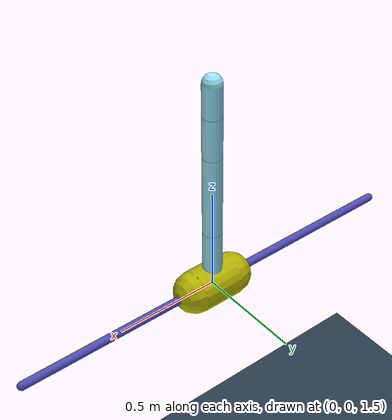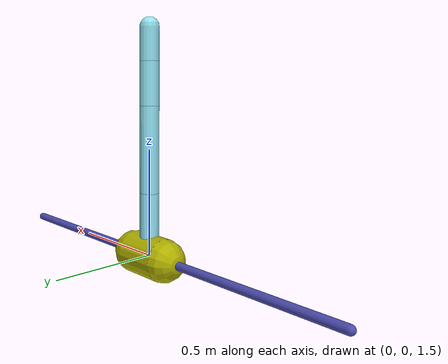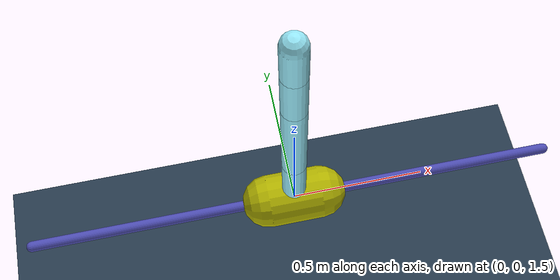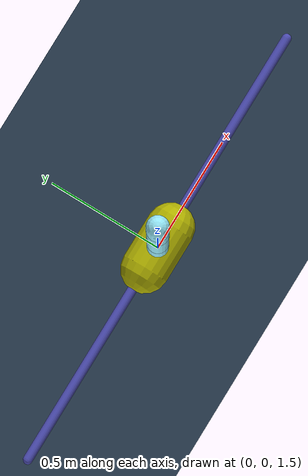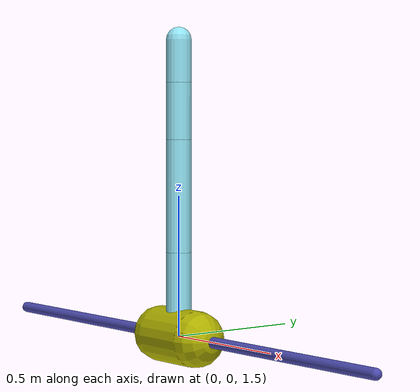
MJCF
<mujoco model="quadruple_pendulum">
    <include file="../worlds/world.xml"/>
    <compiler coordinate="local" inertiafromgeom="true"/>
    <default>
        <joint damping="0"/>
        <geom contype="0" friction="0 0 0"/>
    </default>
    <option gravity="0 0 -9.81" integrator="RK4"/>
    <size nstack="3000"/>
    <worldbody>
        <geom name="rail" pos="0 0 1.5" quat="0.707 0 0.707 0" rgba="0.3 0.3 0.7 1" size="0.02 1" type="capsule"/>
        <body name="pole0" pos="0 0 1.5">
            <camera name="track_front" mode="fixed" pos="0 4 0" xyaxes="-1 0 0 0 0 1"/>
            <geom name="geom_b0" pos="0 0 0" quat="0.707 0 0.707 0" size="0.1 0.1" type="capsule" rgba="0.7 0.7 0 1"/>
            <site name="pole0_0" pos="0 0 0" size="0.01 0.01"/>
            <site name="pole0_1" pos="0 0 0" size="0.01 0.01"/>
            <body name="pole1" pos="0 0 0">
                <joint axis="0 1 0" name="pendulum1" pos="0 0 0" type="hinge"/>
                <geom fromto="0 0 0 0 0 0.3" name="cpole1" rgba="0.588 0.909 0.972 1" size="0.045 0.15" type="capsule" mass="3"/>
                <site name="pole1_0" pos="0 0 0" size="0.01 0.01"/>
                <site name="pole1_1" pos="0 0 .3" size="0.01 0.01"/>
                <body name="pole2" pos="0 0 0.3">
                    <joint axis="0 1 0" name="pendulum2" pos="0 0 0" type="hinge"/>
                    <geom fromto="0 0 0 0 0 0.4" name="cpole2" rgba="0.588 0.909 0.972 1" size="0.045 0.2" type="capsule" mass="2"/>
                    <site name="pole2_0" pos="0 0 0" size="0.01 0.01"/>
                    <site name="pole2_1" pos="0 0 .4" size="0.01 0.01"/>
                    <body name="pole3" pos="0 0 0.4">
                        <joint axis="0 1 0" name="pendulum3" pos="0 0 0" type="hinge"/>
                        <geom fromto="0 0 0 0 0 0.2" name="cpole3" rgba="0.588 0.909 0.972 1" size="0.045 0.1" type="capsule" mass="1.5"/>
                        <site name="pole3_0" pos="0 0 0" size="0.01 0.01"/>
                        <site name="pole3_1" pos="0 0 .2" size="0.01 0.01"/>
                        <body name="pole4" pos="0 0 0.2">
                            <joint axis="0 1 0" name="pendulum4" pos="0 0 0" type="hinge"/>
                            <geom fromto="0 0 0 0 0 0.15" name="cpole4" rgba="0.588 0.909 0.972 1" size="0.045 0.075" type="capsule" mass="0.8"/>
                            <site name="tip" pos="0 0 .15" size="0.01 0.01"/>
                            <site name="pole4_0" pos="0 0 0" size="0.01 0.01"/>
                            <site name="pole4_1" pos="0 0 0.15" size="0.01 0.01"/>
                        </body>
                    </body>
                </body>
            </body>
        </body>
    </worldbody>
    <actuator>
        <motor name="pendulum1_motor" joint="pendulum1" forcerange="-100 100" ctrlrange="-100 100"/>
        <motor name="pendulum2_motor" joint="pendulum2" forcerange="-100 100" ctrlrange="-100 100"/>
        <motor name="pendulum3_motor" joint="pendulum3" forcerange="-100 100" ctrlrange="-100 100"/>
        <motor name="pendulum4_motor" joint="pendulum4" forcerange="-100 100" ctrlrange="-100 100"/>
    </actuator>
</mujoco>

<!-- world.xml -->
<mujoco>
    <statistic extent="2" meansize=".05"/>
    <option timestep="0.001" solver="Newton" iterations="50" tolerance="1e-5" jacobian="sparse" cone="pyramidal" gravity='0 0 -9.81'/>

    <visual>
        <rgba haze="0.15 0.25 0.35 1"/>
        <quality shadowsize="2048"/>
        <map stiffness="700" shadowscale="0.5" fogstart="10" fogend="15" zfar="40" haze="0.3"/>
        <headlight ambient=".2 .2 .2" diffuse=".8 .8 .8" specular="0.1 0.1 0.1"/>
    </visual>

    <asset>
        <texture name="skybox" type="skybox" builtin="gradient" rgb1=".1 .1 .30" rgb2="0 0 0" width="800" height="800" mark="random" markrgb="1 1 1"/>
        <texture name="texplane" type="2d" builtin="checker" rgb1=".2 .3 .4" rgb2=".1 0.15 0.2"
            width="512" height="512" mark="cross" markrgb=".8 .8 .8"/>
        <material name="matplane" reflectance="0.0" texture="texplane" texrepeat="1 1" texuniform="true"/>
    </asset>

    <worldbody>
        <geom name="ground" type="plane" size="0 0 1" pos="0 0 0" quat="1 0 0 0" material="matplane" condim="6"/>
        <light mode='trackcom' pos='0 0 5' dir='0 0 -1'/>
        <light directional='true' pos='0 0 3' dir='0 0 -1' diffuse='0.2 0.2 0.2' specular='0 0 0'/>
    </worldbody>
</mujoco>
